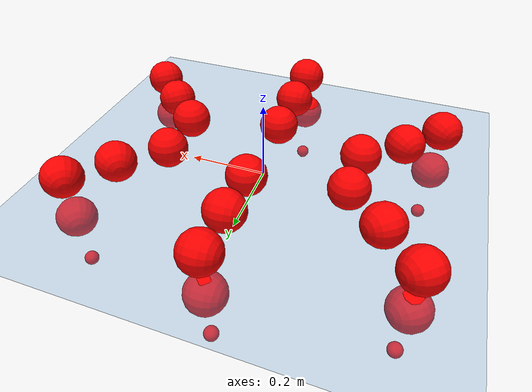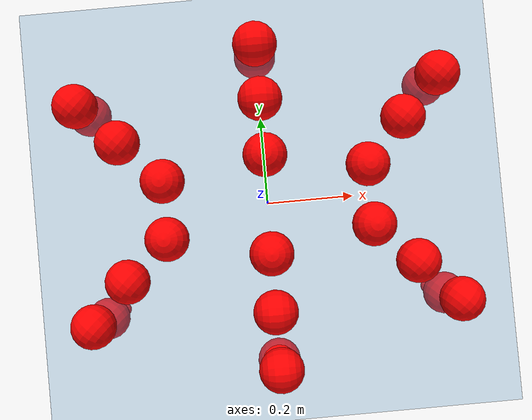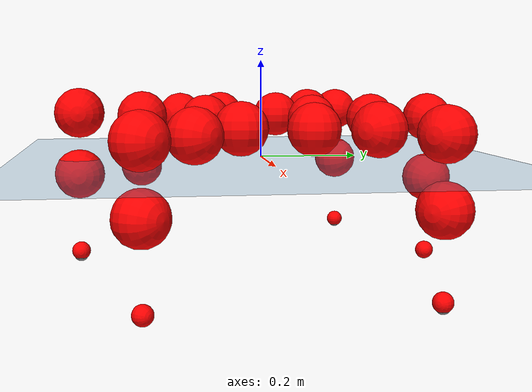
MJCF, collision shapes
<mujoco model="Golem">
  <compiler angle="radian" assetdir="assets" balanceinertia="true" inertiafromgeom="false"/>

  <option timestep="0.005" density="1.2" viscosity="2e-05"/>

  <size nkey="1"/>

  <visual>
    <quality shadowsize="8192"/>
    <map shadowclip="0.5"/>
  </visual>

  <default>
    <default class="/">
      <joint armature="0.01" damping="0.01" frictionloss="0.01"/>
      <geom contype="0" conaffinity="0" group="1" solref="-1000 -80"/>
      <site size="0.01 0.005 0.005" group="5"/>
      <general forcelimited="true" biastype="affine" gainprm="25" biasprm="0 -25 -0.5"/>
      <default class="visual">
        <geom type="mesh" group="2"/>
      </default>
      <default class="collision">
        <geom group="3"/>
      </default>
      <default class="foot">
        <geom size="0.01 0 0" condim="6" group="4" priority="1" solimp="0.015 1 0.01"/>
      </default>
      <default class="reward_collision_sphere">
        <geom group="5" rgba="1 0 0 1"/>
      </default>
    </default>
  </default>

  <asset>
    <texture type="skybox" colorspace="auto" name="//unnamed_texture_0" builtin="gradient" rgb1="0.95 0.95 0.95" rgb2="0.95 0.95 0.95" width="100" height="600"/>
    <texture type="2d" colorspace="auto" name="texplane" builtin="checker" rgb1="0.345 0.575 0.748" rgb2="0.345 0.575 0.748" markrgb="1 1 1" width="512" height="512"/>
    <material name="MatPlane" class="/" texture="texplane" texuniform="true" texrepeat="2 2" specular="0.9"/>
    <mesh name="body" class="/" file="body.stl" scale="0.001 0.001 0.001"/>
    <mesh name="coxa" class="/" file="coxa.stl" scale="0.001 0.001 0.001"/>
    <mesh name="femur" class="/" file="femur.stl" scale="0.001 0.001 0.001"/>
    <mesh name="tibia" class="/" file="tibia.stl" scale="0.001 0.001 0.001"/>
    <mesh name="tarsus" class="/" file="tarsus.stl" scale="0.001 0.001 0.001"/>
  </asset>

  <worldbody>
    <geom name="floor" class="/" size="100 100 0.125" type="plane" group="0" material="MatPlane"/>
    <light name="toplight_shadow" class="/" pos="0 0 5" dir="0.0990148 0.0990148 -0.990148" type="directional" ambient="0.04 0.04 0.04" diffuse="0.55 0.55 0.55" specular="0.12 0.12 0.12"/>
    <light name="toplight_fill" class="/" pos="0 0 5" dir="0.0990148 0.0990148 -0.990148" type="directional" castshadow="false" ambient="0.04 0.04 0.04" diffuse="0.3 0.3 0.3" specular="0.08 0.08 0.08"/>
    <body name="trunk" pos="0.00109875 0.000425674 0.00235784" quat="1 0.000207212 -0.000294367 -0.000308736">
      <inertial pos="-0.000869126 0.00222065 0.00535856" quat="0.999996 0.00219105 -0.000846998 -0.00183963" mass="7.18329" diaginertia="0.0730961 0.0225173 0.0171919"/>
      <joint name="//unnamed_joint_0" type="free"/>
      <geom name="//unnamed_geom_1" class="/" pos="0 0 0.0716114" quat="1 0 0 0" type="mesh" rgba="0.9 0.9 0.9 1" mesh="body"/>
      <site name="imu" class="/" pos="0.176764 -0.00537697 0.1132" size="0.0125648"/>
      <camera name="track" class="/" pos="0 -2.33658 0" quat="0.707107 0.707107 0 0" mode="trackcom"/>
      <camera name="ego_camera" class="/" pos="0.192689 0 0.111893" quat="-0.5 -0.5 0.5 0.5"/>
      <body name="coxa_RR" pos="-0.264306 -0.0937486 0.0759624" quat="0.38304 0.000513251 -0.000407159 -0.923731">
        <inertial pos="0.000238257 0.00223181 0.00162153" quat="0.999999 -0.000269296 0.00121538 -0.000681501" mass="0.408179" diaginertia="0.0742538 0.0228044 0.0195329"/>
        <joint name="coxa_joint_RR" class="/" pos="0 0 0" axis="-0.00527264 -0.00927793 -0.999943" stiffness="0.00779442" range="-3.15208 3.11783" armature="0.0111138" damping="0.0136039" frictionloss="0.0114073"/>
        <geom name="//unnamed_geom_2" class="/" type="mesh" rgba="0.2 0.2 0.2 1" mesh="coxa"/>
        <geom name="//unnamed_geom_3" class="reward_collision_sphere" size="0.0502592" pos="-0.0444666 0 0"/>
        <body name="femur_RR" pos="0.0853341 -0.00636977 -0.00406654" quat="0.499763 -0.499959 0.500045 0.500232">
          <inertial pos="0.00569453 -0.000496762 0.00681316" quat="0.999543 -0.0289948 0.00756236 -0.00407289" mass="0.409512" diaginertia="0.0736992 0.0222391 0.0176955"/>
          <joint name="femur_joint_RR" class="/" pos="0 0 0" axis="0.00169061 0.00192644 -0.999997" range="-3.18091 3.15551" armature="0.0115032" damping="0.0167986" frictionloss="0.0121803"/>
          <geom name="//unnamed_geom_4" class="/" type="mesh" rgba="0.9 0.9 0.9 1" mesh="femur"/>
          <geom name="//unnamed_geom_5" class="reward_collision_sphere" size="0.0502592"/>
          <body name="tibia_RR" pos="-0.000429186 -0.124769 0.00588021" quat="-0.000600558 0.999999 0.00042724 0.000854264">
            <inertial pos="-0.00018217 -0.000825875 0.00366913" quat="0.999998 0.00180378 0.000307927 -3.92858e-05" mass="0.365138" diaginertia="0.0630529 0.0192763 0.0157804"/>
            <joint name="tibia_joint_RR" class="/" pos="0 0 0" axis="0.00613308 0.0128484 0.999899" stiffness="0.00633311" range="-3.12917 3.14881" armature="0.0120678" damping="0" frictionloss="0.0140915"/>
            <geom name="//unnamed_geom_6" class="/" type="mesh" rgba="0.2 0.2 0.2 1" mesh="tibia"/>
            <geom name="//unnamed_geom_7" class="reward_collision_sphere" size="0.0502592"/>
            <body name="tarsus_RR" pos="0.13415 0.000279368 -0.00140155" quat="1 -2.32981e-05 4.19279e-05 3.03513e-05">
              <inertial pos="0.0891533 0.000744094 0.000480581" quat="0.525894 0.490118 0.491031 0.492045" mass="0.366033" diaginertia="0.0732338 0.0222438 0.0168906"/>
              <joint name="tarsus_joint_RR" class="/" pos="0 0 0" axis="0.024118 -0.021061 0.999487" stiffness="0.00559149" range="-3.16817 3.15864" armature="0.0118765" damping="0.0398104" frictionloss="0.0138591"/>
              <geom name="//unnamed_geom_8" class="/" type="mesh" rgba="0.9 0.9 0.9 1" mesh="tarsus"/>
              <geom name="foot_1" class="foot" size="0.0120542" pos="0.166009 0 0" quat="0 -0.707107 0 0.707107"/>
              <geom name="//unnamed_geom_10" class="reward_collision_sphere" size="0.0502592"/>
              <geom name="//unnamed_geom_11" class="reward_collision_sphere" size="0.0188472" pos="0.159339 0 0"/>
              <site name="foot_1" class="foot" pos="0.166009 0 0" quat="0 -0.707107 0 0.707107" size="0.0125648"/>
            </body>
          </body>
        </body>
      </body>
      <body name="coxa_RM" pos="-0.00266462 -0.15979 0.076576" quat="0.707785 -0.00300466 0.000169867 -0.706421">
        <inertial pos="0.00299612 0.000289212 0.00464322" quat="0.999943 0.00225683 0.000960873 0.0104088" mass="0.39504" diaginertia="0.077418 0.0218673 0.0170686"/>
        <joint name="coxa_joint_RM" class="/" pos="0 0 0" axis="0.00551333 0.0017466 -0.999983" range="-3.18583 3.09662" armature="0.0140058" damping="0.00938249" frictionloss="0.0119693"/>
        <geom name="//unnamed_geom_12" class="/" type="mesh" rgba="0.2 0.2 0.2 1" mesh="coxa"/>
        <geom name="//unnamed_geom_13" class="reward_collision_sphere" size="0.0502592" pos="-0.0444666 0 0"/>
        <body name="femur_RM" pos="0.0848975 -0.00268126 0.00739251" quat="0.499363 -0.500107 0.500625 0.499903">
          <inertial pos="-0.0049764 -0.000543895 9.31579e-06" quat="0.999603 -0.00399966 -0.0213576 -0.0179108" mass="0.385977" diaginertia="0.0735571 0.0225651 0.0170445"/>
          <joint name="femur_joint_RM" class="/" pos="0 0 0" axis="0.0147379 -0.00320009 -0.999886" stiffness="0.00316843" range="-3.12733 3.15457" armature="0.013444" damping="0.0223463" frictionloss="0.0113052"/>
          <geom name="//unnamed_geom_14" class="/" type="mesh" rgba="0.9 0.9 0.9 1" mesh="femur"/>
          <geom name="//unnamed_geom_15" class="reward_collision_sphere" size="0.0502592"/>
          <body name="tibia_RM" pos="-0.00667714 -0.126107 0.00119812" quat="0.000242918 1 0.000232701 -8.10297e-05">
            <inertial pos="0.00574597 0.00126414 0.000529052" quat="0.999932 -0.00992357 0.00609301 0.000830982" mass="0.406131" diaginertia="0.0710727 0.0228728 0.0192528"/>
            <joint name="tibia_joint_RM" class="/" pos="0 0 0" axis="0.00116944 0.00619494 0.99998" range="-3.11918 3.11336" armature="0.0120568" damping="0.0168515" frictionloss="0.0116927"/>
            <geom name="//unnamed_geom_16" class="/" type="mesh" rgba="0.2 0.2 0.2 1" mesh="tibia"/>
            <geom name="//unnamed_geom_17" class="reward_collision_sphere" size="0.0502592"/>
            <body name="tarsus_RM" pos="0.124845 0.00134555 0.00250652" quat="1 0.00011713 0.000726298 6.87955e-05">
              <inertial pos="0.0872549 -0.0016783 -0.00148433" quat="0.499887 0.495106 0.495382 0.50949" mass="0.415223" diaginertia="0.0767569 0.0223834 0.0174506"/>
              <joint name="tarsus_joint_RM" class="/" pos="0 0 0" axis="0.011143 0.00297445 0.999933" stiffness="0.000388704" range="-3.10632 3.13837" armature="0.0126566" damping="0.0196985" frictionloss="0.013598"/>
              <geom name="//unnamed_geom_18" class="/" type="mesh" rgba="0.9 0.9 0.9 1" mesh="tarsus"/>
              <geom name="foot_2" class="foot" size="0.0146297" pos="0.166009 0 0" quat="0 -0.707107 0 0.707107"/>
              <geom name="//unnamed_geom_20" class="reward_collision_sphere" size="0.0502592"/>
              <geom name="//unnamed_geom_21" class="reward_collision_sphere" size="0.0188472" pos="0.159339 0 0"/>
              <site name="foot_2" class="foot" pos="0.166009 0 0" quat="0 -0.707107 0 0.707107" size="0.0125648"/>
            </body>
          </body>
        </body>
      </body>
      <body name="coxa_RF" pos="0.26376 -0.100846 0.0719108" quat="0.923785 -0.000196618 0.00040482 -0.382912">
        <inertial pos="0.0064772 0.00274517 0.00175365" quat="0.999861 -0.00482216 -0.00228974 0.0157785" mass="0.365683" diaginertia="0.0721772 0.0234467 0.0179881"/>
        <joint name="coxa_joint_RF" class="/" pos="0 0 0" axis="-0.00521072 0.00634219 -0.999966" stiffness="0.00467495" range="-3.15963 3.1432" armature="0.0113039" damping="0.0102521" frictionloss="0.0114729"/>
        <geom name="//unnamed_geom_22" class="/" type="mesh" rgba="0.2 0.2 0.2 1" mesh="coxa"/>
        <geom name="//unnamed_geom_23" class="reward_collision_sphere" size="0.0502592" pos="-0.0444666 0 0"/>
        <body name="femur_RF" pos="0.084722 0.000964542 -0.00478308" quat="0.499452 -0.500581 0.499702 0.500265">
          <inertial pos="-0.000276319 -0.00563201 0.000114705" quat="0.99996 -0.00466782 -0.00625673 -0.00435175" mass="0.399324" diaginertia="0.0700108 0.0224209 0.0169108"/>
          <joint name="femur_joint_RF" class="/" pos="0 0 0" axis="-0.00236188 -0.00263049 -0.999994" stiffness="0.026804" range="-3.08984 3.16302" armature="0.0119834" damping="0.0135476" frictionloss="0.0111952"/>
          <geom name="//unnamed_geom_24" class="/" type="mesh" rgba="0.9 0.9 0.9 1" mesh="femur"/>
          <geom name="//unnamed_geom_25" class="reward_collision_sphere" size="0.0502592"/>
          <body name="tibia_RF" pos="0.000101907 -0.129165 -0.00315595" quat="-0.000158153 0.999999 0.000833034 0.000644442">
            <inertial pos="0.004629 0.00197052 -0.00370477" quat="0.999999 0.000302749 0.00111574 2.10516e-05" mass="0.388967" diaginertia="0.0722116 0.022306 0.0176816"/>
            <joint name="tibia_joint_RF" class="/" pos="0 0 0" axis="-0.0133173 0.00240475 0.999908" stiffness="0.00746425" range="-3.11513 3.17545" armature="0.0109861" damping="0.0455207" frictionloss="0.0134054"/>
            <geom name="//unnamed_geom_26" class="/" type="mesh" rgba="0.2 0.2 0.2 1" mesh="tibia"/>
            <geom name="//unnamed_geom_27" class="reward_collision_sphere" size="0.0502592"/>
            <body name="tarsus_RF" pos="0.126489 -0.00445024 0.00395397" quat="1 -0.00045983 -0.000308276 -0.000308107">
              <inertial pos="0.0855354 0.000359999 -0.00125241" quat="0.491808 0.497294 0.505623 0.505142" mass="0.408432" diaginertia="0.0730151 0.0202954 0.0183564"/>
              <joint name="tarsus_joint_RF" class="/" pos="0 0 0" axis="-0.000648661 0.00289777 0.999996" range="-3.14384 3.12672" armature="0.010875" damping="0" frictionloss="0.00844768"/>
              <geom name="//unnamed_geom_28" class="/" type="mesh" rgba="0.9 0.9 0.9 1" mesh="tarsus"/>
              <geom name="foot_3" class="foot" size="0.0102348" pos="0.166009 0 0" quat="0 -0.707107 0 0.707107"/>
              <geom name="//unnamed_geom_30" class="reward_collision_sphere" size="0.0502592"/>
              <geom name="//unnamed_geom_31" class="reward_collision_sphere" size="0.0188472" pos="0.159339 0 0"/>
              <site name="foot_3" class="foot" pos="0.166009 0 0" quat="0 -0.707107 0 0.707107" size="0.0125648"/>
            </body>
          </body>
        </body>
      </body>
      <body name="coxa_LR" pos="-0.263927 0.0994595 0.0747712" quat="0.384011 0.00168289 -0.000203654 0.923327">
        <inertial pos="-0.00213206 0.00212683 0.00609246" quat="0.999925 -0.00788042 -0.00173746 0.00921966" mass="0.450051" diaginertia="0.0782206 0.0239774 0.0197212"/>
        <joint name="coxa_joint_LR" class="/" pos="0 0 0" axis="0.00650482 0.000499491 -0.999979" range="-3.17839 3.01494" armature="0.0110021" damping="0.013487" frictionloss="0.0164284"/>
        <geom name="//unnamed_geom_32" class="/" type="mesh" rgba="0.2 0.2 0.2 1" mesh="coxa"/>
        <geom name="//unnamed_geom_33" class="reward_collision_sphere" size="0.0502592" pos="-0.0444666 0 0"/>
        <body name="femur_LR" pos="0.0874716 -0.000741427 0.00514386" quat="0.499783 -0.501048 0.499568 0.499599">
          <inertial pos="-0.000854195 -0.0020349 -0.00164447" quat="0.999999 0.00011565 -0.000742186 -0.000812394" mass="0.398367" diaginertia="0.0706129 0.0199895 0.0179551"/>
          <joint name="femur_joint_LR" class="/" pos="0 0 0" axis="0.0030507 -0.00571024 0.999979" stiffness="0.00849877" range="-3.10902 3.18712" armature="0.0117987" damping="0.0139323" frictionloss="0.0113383"/>
          <geom name="//unnamed_geom_34" class="/" type="mesh" rgba="0.9 0.9 0.9 1" mesh="femur"/>
          <geom name="//unnamed_geom_35" class="reward_collision_sphere" size="0.0502592"/>
          <body name="tibia_LR" pos="0.00320935 -0.125764 -0.0012074" quat="0.000223978 0.999999 0.000101128 -0.00120514">
            <inertial pos="-0.000885445 -0.00522267 -1.29577e-05" quat="0.999906 -0.0128363 0.00430136 0.00204381" mass="0.397707" diaginertia="0.0644494 0.0205233 0.0185291"/>
            <joint name="tibia_joint_LR" class="/" pos="0 0 0" axis="-0.00434006 -0.00285336 -0.999987" range="-3.13501 3.15417" armature="0.0137653" damping="0" frictionloss="0.0124633"/>
            <geom name="//unnamed_geom_36" class="/" type="mesh" rgba="0.2 0.2 0.2 1" mesh="tibia"/>
            <geom name="//unnamed_geom_37" class="reward_collision_sphere" size="0.0502592"/>
            <body name="tarsus_LR" pos="0.126158 -0.000216531 -0.000355507" quat="1 0.000340096 -0.000256169 -9.65697e-05">
              <inertial pos="0.0883517 0.000921278 -0.00169457" quat="0.502315 0.499888 0.497441 0.500344" mass="0.420866" diaginertia="0.0756698 0.023589 0.0190129"/>
              <joint name="tarsus_joint_LR" class="/" pos="0 0 0" axis="0.00267292 0.00414573 -0.999988" range="-3.18752 3.09395" armature="0.0166864" damping="0.0365181" frictionloss="0.0115493"/>
              <geom name="//unnamed_geom_38" class="/" type="mesh" rgba="0.9 0.9 0.9 1" mesh="tarsus"/>
              <geom name="foot_4" class="foot" size="0.0138051" pos="0.166009 0 0" quat="0.707107 0 -0.707107 0"/>
              <geom name="//unnamed_geom_40" class="reward_collision_sphere" size="0.0502592"/>
              <geom name="//unnamed_geom_41" class="reward_collision_sphere" size="0.0188472" pos="0.159339 0 0"/>
              <site name="foot_4" class="foot" pos="0.166009 0 0" quat="0.707107 0 -0.707107 0" size="0.0125648"/>
            </body>
          </body>
        </body>
      </body>
      <body name="coxa_LM" pos="0.00155141 0.151653 0.0756015" quat="0.707145 -0.00337629 0.00130339 0.707059">
        <inertial pos="-0.00327551 0.00426564 0.000495197" quat="0.999875 0.0111154 0.0063605 -0.00927408" mass="0.390802" diaginertia="0.0742081 0.0224355 0.0174838"/>
        <joint name="coxa_joint_LM" class="/" pos="0 0 0" axis="0.00845348 0.000725326 -0.999964" range="-3.14292 3.13246" armature="0.00859906" damping="0.00778613" frictionloss="0.0137023"/>
        <geom name="//unnamed_geom_42" class="/" type="mesh" rgba="0.2 0.2 0.2 1" mesh="coxa"/>
        <geom name="//unnamed_geom_43" class="reward_collision_sphere" size="0.0502592" pos="-0.0444666 0 0"/>
        <body name="femur_LM" pos="0.0815075 9.93376e-05 0.0023259" quat="0.50026 -0.500102 0.499157 0.500481">
          <inertial pos="0.00298612 -0.000271954 0.0043764" quat="0.999998 0.00191065 0.000125844 -0.000582681" mass="0.368622" diaginertia="0.0680416 0.021895 0.0171312"/>
          <joint name="femur_joint_LM" class="/" pos="0 0 0" axis="-0.00652889 -0.00842359 0.999943" stiffness="0.00109761" range="-3.15656 3.18056" armature="0.0118733" damping="0.00122125" frictionloss="0.0126655"/>
          <geom name="//unnamed_geom_44" class="/" type="mesh" rgba="0.9 0.9 0.9 1" mesh="femur"/>
          <geom name="//unnamed_geom_45" class="reward_collision_sphere" size="0.0502592"/>
          <body name="tibia_LM" pos="-0.0013696 -0.123613 0.000790271" quat="-9.60132e-05 1 0.000622465 0.000458867">
            <inertial pos="-0.00577336 -0.00639526 -0.00679247" quat="0.999999 0.0015333 0.000128334 -0.000417225" mass="0.39219" diaginertia="0.0696883 0.0225047 0.0168216"/>
            <joint name="tibia_joint_LM" class="/" pos="0 0 0" axis="-0.000355072 -0.00101354 -0.999999" stiffness="0.0131537" range="-3.09728 3.12882" armature="0.0117559" damping="0.00777279" frictionloss="0.0140405"/>
            <geom name="//unnamed_geom_46" class="/" type="mesh" rgba="0.2 0.2 0.2 1" mesh="tibia"/>
            <geom name="//unnamed_geom_47" class="reward_collision_sphere" size="0.0502592"/>
            <body name="tarsus_LM" pos="0.129028 0.00340804 -0.00281776" quat="1 0.00042054 -8.16155e-05 0.00029065">
              <inertial pos="0.090403 0.00132835 -0.000656706" quat="0.492789 0.500579 0.499211 0.507314" mass="0.368794" diaginertia="0.0704491 0.0183074 0.01603"/>
              <joint name="tarsus_joint_LM" class="/" pos="0 0 0" axis="-0.0140159 0.00461215 -0.999891" range="-2.98938 3.18529" armature="0.0124903" damping="0" frictionloss="0.0120853"/>
              <geom name="//unnamed_geom_48" class="/" type="mesh" rgba="0.9 0.9 0.9 1" mesh="tarsus"/>
              <geom name="foot_5" class="foot" size="0.012458" pos="0.166009 0 0" quat="0.707107 0 -0.707107 0"/>
              <geom name="//unnamed_geom_50" class="reward_collision_sphere" size="0.0502592"/>
              <geom name="//unnamed_geom_51" class="reward_collision_sphere" size="0.0188472" pos="0.159339 0 0"/>
              <site name="foot_5" class="foot" pos="0.166009 0 0" quat="0.707107 0 -0.707107 0" size="0.0125648"/>
            </body>
          </body>
        </body>
      </body>
      <body name="coxa_LF" pos="0.261838 0.0977368 0.0688885" quat="0.923792 -0.000264831 0.00226691 0.382888">
        <inertial pos="0.000973147 -0.00606644 -0.000387478" quat="0.999981 -0.00218184 -0.00348611 0.00451386" mass="0.378587" diaginertia="0.0665373 0.019459 0.0161809"/>
        <joint name="coxa_joint_LF" class="/" pos="0 0 0" axis="-0.000513758 -0.00339228 -0.999994" stiffness="0.0055661" range="-3.15543 3.17608" armature="0.00824465" damping="0.021291" frictionloss="0.0138091"/>
        <geom name="//unnamed_geom_52" class="/" type="mesh" rgba="0.2 0.2 0.2 1" mesh="coxa"/>
        <geom name="//unnamed_geom_53" class="reward_collision_sphere" size="0.0502592" pos="-0.0444666 0 0"/>
        <body name="femur_LF" pos="0.0870439 0.0078917 0.00533269" quat="0.50065 -0.500622 0.498878 0.499848">
          <inertial pos="-0.00134086 -0.00266038 -0.00674285" quat="0.999806 0.000162865 0.0178862 0.00819056" mass="0.407479" diaginertia="0.072359 0.0198817 0.0171592"/>
          <joint name="femur_joint_LF" class="/" pos="0 0 0" axis="-0.0116395 -0.00655532 0.999911" stiffness="0.0204321" range="-3.13883 3.25125" armature="0.0124907" damping="0.00792642" frictionloss="0.0139643"/>
          <geom name="//unnamed_geom_54" class="/" type="mesh" rgba="0.9 0.9 0.9 1" mesh="femur"/>
          <geom name="//unnamed_geom_55" class="reward_collision_sphere" size="0.0502592"/>
          <body name="tibia_LF" pos="0.00212087 -0.126087 0.00341662" quat="-0.000504926 0.999998 -0.00157317 -0.00122161">
            <inertial pos="0.00233344 0.00522775 -0.000203841" quat="0.999932 -0.0104138 -0.00471933 0.00229548" mass="0.392836" diaginertia="0.0716118 0.0218135 0.0171594"/>
            <joint name="tibia_joint_LF" class="/" pos="0 0 0" axis="-0.0137445 -0.00832102 -0.999871" range="-3.07191 3.17228" armature="0.0119524" damping="0.0137816" frictionloss="0.00964506"/>
            <geom name="//unnamed_geom_56" class="/" type="mesh" rgba="0.2 0.2 0.2 1" mesh="tibia"/>
            <geom name="//unnamed_geom_57" class="reward_collision_sphere" size="0.0502592"/>
            <body name="tarsus_LF" pos="0.129485 -0.00132885 -0.00124259" quat="0.999994 -0.00203794 -0.00243479 0.00155291">
              <inertial pos="0.0901368 -0.00103774 -0.000893461" quat="0.498334 0.492858 0.504234 0.504483" mass="0.390906" diaginertia="0.0759762 0.0228667 0.0189789"/>
              <joint name="tarsus_joint_LF" class="/" pos="0 0 0" axis="0.0247768 0.0229492 -0.99943" stiffness="0.0114539" range="-3.10931 3.20438" armature="0.0135149" damping="0.0379427" frictionloss="0.0127475"/>
              <geom name="//unnamed_geom_58" class="/" type="mesh" rgba="0.9 0.9 0.9 1" mesh="tarsus"/>
              <geom name="foot_6" class="foot" size="0.0141302" pos="0.166009 0 0" quat="0.707107 0 -0.707107 0"/>
              <geom name="//unnamed_geom_60" class="reward_collision_sphere" size="0.0502592"/>
              <geom name="//unnamed_geom_61" class="reward_collision_sphere" size="0.0188472" pos="0.159339 0 0"/>
              <site name="foot_6" class="foot" pos="0.166009 0 0" quat="0.707107 0 -0.707107 0" size="0.0125648"/>
            </body>
          </body>
        </body>
      </body>
    </body>
  </worldbody>

  <contact>
    <pair class="/" geom1="floor" geom2="foot_1" name="//unnamed_contact_0"/>
    <pair class="/" geom1="floor" geom2="foot_2" name="//unnamed_contact_1"/>
    <pair class="/" geom1="floor" geom2="foot_3" name="//unnamed_contact_2"/>
    <pair class="/" geom1="floor" geom2="foot_4" name="//unnamed_contact_3"/>
    <pair class="/" geom1="floor" geom2="foot_5" name="//unnamed_contact_4"/>
    <pair class="/" geom1="floor" geom2="foot_6" name="//unnamed_contact_5"/>
  </contact>

  <actuator>
    <general name="coxa_joint_RR" class="/" joint="coxa_joint_RR" forcerange="-11.0096 11.0096" gainprm="30.5198" biasprm="0 -30.5198 -0.63719"/>
    <general name="femur_joint_RR" class="/" joint="femur_joint_RR" forcerange="-9.38652 9.38652" gainprm="30.5198" biasprm="0 -30.5198 -0.63719"/>
    <general name="tibia_joint_RR" class="/" joint="tibia_joint_RR" forcerange="-11.3774 11.3774" gainprm="30.5198" biasprm="0 -30.5198 -0.63719"/>
    <general name="tarsus_joint_RR" class="/" joint="tarsus_joint_RR" forcerange="-9.15105 9.15105" gainprm="30.5198" biasprm="0 -30.5198 -0.63719"/>
    <general name="coxa_joint_RM" class="/" joint="coxa_joint_RM" forcerange="-9.26618 9.26618" gainprm="30.5198" biasprm="0 -30.5198 -0.63719"/>
    <general name="femur_joint_RM" class="/" joint="femur_joint_RM" forcerange="-9.08176 9.08176" gainprm="30.5198" biasprm="0 -30.5198 -0.63719"/>
    <general name="tibia_joint_RM" class="/" joint="tibia_joint_RM" forcerange="-10.6681 10.6681" gainprm="30.5198" biasprm="0 -30.5198 -0.63719"/>
    <general name="tarsus_joint_RM" class="/" joint="tarsus_joint_RM" forcerange="-7.10287 7.10287" gainprm="30.5198" biasprm="0 -30.5198 -0.63719"/>
    <general name="coxa_joint_RF" class="/" joint="coxa_joint_RF" forcerange="-9.96556 9.96556" gainprm="30.5198" biasprm="0 -30.5198 -0.63719"/>
    <general name="femur_joint_RF" class="/" joint="femur_joint_RF" forcerange="-8.89953 8.89953" gainprm="30.5198" biasprm="0 -30.5198 -0.63719"/>
    <general name="tibia_joint_RF" class="/" joint="tibia_joint_RF" forcerange="-7.43813 7.43813" gainprm="30.5198" biasprm="0 -30.5198 -0.63719"/>
    <general name="tarsus_joint_RF" class="/" joint="tarsus_joint_RF" forcerange="-9.44203 9.44203" gainprm="30.5198" biasprm="0 -30.5198 -0.63719"/>
    <general name="coxa_joint_LR" class="/" joint="coxa_joint_LR" forcerange="-9.14246 9.14246" gainprm="30.5198" biasprm="0 -30.5198 -0.63719"/>
    <general name="femur_joint_LR" class="/" joint="femur_joint_LR" forcerange="-10.2377 10.2377" gainprm="30.5198" biasprm="0 -30.5198 -0.63719"/>
    <general name="tibia_joint_LR" class="/" joint="tibia_joint_LR" forcerange="-8.8769 8.8769" gainprm="30.5198" biasprm="0 -30.5198 -0.63719"/>
    <general name="tarsus_joint_LR" class="/" joint="tarsus_joint_LR" forcerange="-9.60898 9.60898" gainprm="30.5198" biasprm="0 -30.5198 -0.63719"/>
    <general name="coxa_joint_LM" class="/" joint="coxa_joint_LM" forcerange="-8.87921 8.87921" gainprm="30.5198" biasprm="0 -30.5198 -0.63719"/>
    <general name="femur_joint_LM" class="/" joint="femur_joint_LM" forcerange="-8.46678 8.46678" gainprm="30.5198" biasprm="0 -30.5198 -0.63719"/>
    <general name="tibia_joint_LM" class="/" joint="tibia_joint_LM" forcerange="-9.85509 9.85509" gainprm="30.5198" biasprm="0 -30.5198 -0.63719"/>
    <general name="tarsus_joint_LM" class="/" joint="tarsus_joint_LM" forcerange="-8.36946 8.36946" gainprm="30.5198" biasprm="0 -30.5198 -0.63719"/>
    <general name="coxa_joint_LF" class="/" joint="coxa_joint_LF" forcerange="-8.65478 8.65478" gainprm="30.5198" biasprm="0 -30.5198 -0.63719"/>
    <general name="femur_joint_LF" class="/" joint="femur_joint_LF" forcerange="-9.92545 9.92545" gainprm="30.5198" biasprm="0 -30.5198 -0.63719"/>
    <general name="tibia_joint_LF" class="/" joint="tibia_joint_LF" forcerange="-8.69469 8.69469" gainprm="30.5198" biasprm="0 -30.5198 -0.63719"/>
    <general name="tarsus_joint_LF" class="/" joint="tarsus_joint_LF" forcerange="-8.83519 8.83519" gainprm="30.5198" biasprm="0 -30.5198 -0.63719"/>
  </actuator>

  <sensor>
    <gyro site="imu" name="imu_angular_velocity"/>
    <velocimeter site="imu" name="imu_linear_velocity"/>
    <framelinvel objtype="site" objname="foot_1" name="foot_1_global_linear_velocity"/>
    <framelinvel objtype="site" objname="foot_2" name="foot_2_global_linear_velocity"/>
    <framelinvel objtype="site" objname="foot_3" name="foot_3_global_linear_velocity"/>
    <framelinvel objtype="site" objname="foot_4" name="foot_4_global_linear_velocity"/>
    <framelinvel objtype="site" objname="foot_5" name="foot_5_global_linear_velocity"/>
    <framelinvel objtype="site" objname="foot_6" name="foot_6_global_linear_velocity"/>
  </sensor>

  <keyframe>
    <key name="home" qpos="0 0 0.1457 1 0 0 0 0 0 0 0 0 0 0 0 0 0 0 0 0 0 0 0 0 0 0 0 0 0 0 0"/>
  </keyframe>
</mujoco>
